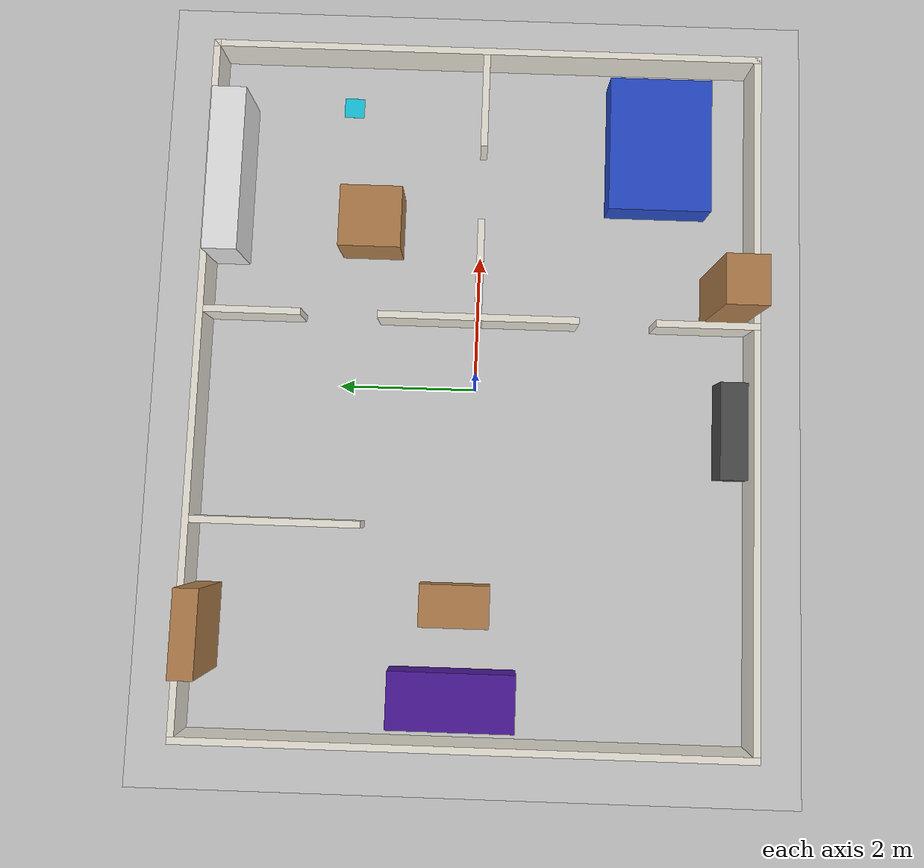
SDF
<sdf version="1.6">
 <world name="fetch_deliver_apartment">
  <physics type="ode">
   <real_time_update_rate>1000.0</real_time_update_rate>
   <max_step_size>0.001</max_step_size>
   <real_time_factor>1</real_time_factor>
   <ode>
    <solver><type>quick</type><iters>150</iters><precon_iters>0</precon_iters><sor>1.4</sor></solver>
    <constraints>
     <cfm>0.00001</cfm>
     <erp>0.2</erp>
     <contact_max_correcting_vel>2000</contact_max_correcting_vel>
     <contact_surface_layer>0.001</contact_surface_layer>
    </constraints>
   </ode>
  </physics>
  <scene><ambient>0.5 0.5 0.5 1</ambient><background>0.7 0.75 0.8 1</background><shadows>false</shadows></scene>
  <include><uri>model://sun</uri></include>
  <include><uri>model://ground_plane</uri></include>
  <model name="walls">
   <static>true</static>
   <link name="wall_0">
    <pose>0.0000 -4.0000 0.3000 0 0 0.0000</pose>
    <collision name="collision"><geometry><box><size>10.1000 0.1000 0.6000</size></box></geometry></collision>
    <visual name="visual">
     <geometry><box><size>10.1000 0.1000 0.6000</size></box></geometry>
     <material>
      <ambient>0.93 0.91 0.86 1</ambient>
      <diffuse>0.93 0.91 0.86 1</diffuse>
      <specular>0.1 0.1 0.1 1</specular>
     </material>
    </visual>
   </link>
   <link name="wall_1">
    <pose>5.0000 0.0000 0.3000 0 0 1.5708</pose>
    <collision name="collision"><geometry><box><size>8.1000 0.1000 0.6000</size></box></geometry></collision>
    <visual name="visual">
     <geometry><box><size>8.1000 0.1000 0.6000</size></box></geometry>
     <material>
      <ambient>0.93 0.91 0.86 1</ambient>
      <diffuse>0.93 0.91 0.86 1</diffuse>
      <specular>0.1 0.1 0.1 1</specular>
     </material>
    </visual>
   </link>
   <link name="wall_2">
    <pose>0.0000 4.0000 0.3000 0 0 3.1416</pose>
    <collision name="collision"><geometry><box><size>10.1000 0.1000 0.6000</size></box></geometry></collision>
    <visual name="visual">
     <geometry><box><size>10.1000 0.1000 0.6000</size></box></geometry>
     <material>
      <ambient>0.93 0.91 0.86 1</ambient>
      <diffuse>0.93 0.91 0.86 1</diffuse>
      <specular>0.1 0.1 0.1 1</specular>
     </material>
    </visual>
   </link>
   <link name="wall_3">
    <pose>-5.0000 0.0000 0.3000 0 0 -1.5708</pose>
    <collision name="collision"><geometry><box><size>8.1000 0.1000 0.6000</size></box></geometry></collision>
    <visual name="visual">
     <geometry><box><size>8.1000 0.1000 0.6000</size></box></geometry>
     <material>
      <ambient>0.93 0.91 0.86 1</ambient>
      <diffuse>0.93 0.91 0.86 1</diffuse>
      <specular>0.1 0.1 0.1 1</specular>
     </material>
    </visual>
   </link>
   <link name="wall_4">
    <pose>1.0000 -3.3000 0.3000 0 0 1.5708</pose>
    <collision name="collision"><geometry><box><size>1.5000 0.1000 0.6000</size></box></geometry></collision>
    <visual name="visual">
     <geometry><box><size>1.5000 0.1000 0.6000</size></box></geometry>
     <material>
      <ambient>0.93 0.91 0.86 1</ambient>
      <diffuse>0.93 0.91 0.86 1</diffuse>
      <specular>0.1 0.1 0.1 1</specular>
     </material>
    </visual>
   </link>
   <link name="wall_5">
    <pose>1.0000 0.0000 0.3000 0 0 1.5708</pose>
    <collision name="collision"><geometry><box><size>2.9000 0.1000 0.6000</size></box></geometry></collision>
    <visual name="visual">
     <geometry><box><size>2.9000 0.1000 0.6000</size></box></geometry>
     <material>
      <ambient>0.93 0.91 0.86 1</ambient>
      <diffuse>0.93 0.91 0.86 1</diffuse>
      <specular>0.1 0.1 0.1 1</specular>
     </material>
    </visual>
   </link>
   <link name="wall_6">
    <pose>1.0000 3.3000 0.3000 0 0 1.5708</pose>
    <collision name="collision"><geometry><box><size>1.5000 0.1000 0.6000</size></box></geometry></collision>
    <visual name="visual">
     <geometry><box><size>1.5000 0.1000 0.6000</size></box></geometry>
     <material>
      <ambient>0.93 0.91 0.86 1</ambient>
      <diffuse>0.93 0.91 0.86 1</diffuse>
      <specular>0.1 0.1 0.1 1</specular>
     </material>
    </visual>
   </link>
   <link name="wall_7">
    <pose>1.7000 0.0000 0.3000 0 0 0.0000</pose>
    <collision name="collision"><geometry><box><size>1.5000 0.1000 0.6000</size></box></geometry></collision>
    <visual name="visual">
     <geometry><box><size>1.5000 0.1000 0.6000</size></box></geometry>
     <material>
      <ambient>0.93 0.91 0.86 1</ambient>
      <diffuse>0.93 0.91 0.86 1</diffuse>
      <specular>0.1 0.1 0.1 1</specular>
     </material>
    </visual>
   </link>
   <link name="wall_8">
    <pose>4.3000 0.0000 0.3000 0 0 0.0000</pose>
    <collision name="collision"><geometry><box><size>1.5000 0.1000 0.6000</size></box></geometry></collision>
    <visual name="visual">
     <geometry><box><size>1.5000 0.1000 0.6000</size></box></geometry>
     <material>
      <ambient>0.93 0.91 0.86 1</ambient>
      <diffuse>0.93 0.91 0.86 1</diffuse>
      <specular>0.1 0.1 0.1 1</specular>
     </material>
    </visual>
   </link>
   <link name="wall_9">
    <pose>-2.0000 2.8000 0.3000 0 0 1.5708</pose>
    <collision name="collision"><geometry><box><size>2.5000 0.1000 0.6000</size></box></geometry></collision>
    <visual name="visual">
     <geometry><box><size>2.5000 0.1000 0.6000</size></box></geometry>
     <material>
      <ambient>0.93 0.91 0.86 1</ambient>
      <diffuse>0.93 0.91 0.86 1</diffuse>
      <specular>0.1 0.1 0.1 1</specular>
     </material>
    </visual>
   </link>
  </model>
  <model name="sofa">
   <static>true</static>
   <pose>-4.4 0.2 0 0 0 1.5708</pose>
   <link name="link">
    <pose>0.0000 0.0000 0.2250 0 0 0.0000</pose>
    <collision name="collision"><geometry><box><size>1.8000 0.8000 0.4500</size></box></geometry></collision>
    <visual name="visual">
     <geometry><box><size>1.8000 0.8000 0.4500</size></box></geometry>
     <material>
      <script><uri>file://media/materials/scripts/gazebo.material</uri><name>Gazebo/Indigo</name></script>
     </material>
    </visual>
   </link>
  </model>
  <model name="coffee_table">
   <static>true</static>
   <pose>-3.1 0.2 0 0 0 0.0</pose>
   <link name="link">
    <pose>0.0000 0.0000 0.2000 0 0 0.0000</pose>
    <collision name="collision"><geometry><box><size>0.6000 1.0000 0.4000</size></box></geometry></collision>
    <visual name="visual">
     <geometry><box><size>0.6000 1.0000 0.4000</size></box></geometry>
     <material>
      <script><uri>file://media/materials/scripts/gazebo.material</uri><name>Gazebo/Wood</name></script>
     </material>
    </visual>
   </link>
  </model>
  <model name="tv_stand">
   <static>true</static>
   <pose>-0.5 -3.7 0 0 0 0.0</pose>
   <link name="link">
    <pose>0.0000 0.0000 0.2500 0 0 0.0000</pose>
    <collision name="collision"><geometry><box><size>1.4000 0.4000 0.5000</size></box></geometry></collision>
    <visual name="visual">
     <geometry><box><size>1.4000 0.4000 0.5000</size></box></geometry>
     <material>
      <script><uri>file://media/materials/scripts/gazebo.material</uri><name>Gazebo/DarkGrey</name></script>
     </material>
    </visual>
   </link>
  </model>
  <model name="bookshelf">
   <static>true</static>
   <pose>-3.5 3.75 0 0 0 0.0</pose>
   <link name="link">
    <pose>0.0000 0.0000 0.6000 0 0 0.0000</pose>
    <collision name="collision"><geometry><box><size>1.2000 0.3500 1.2000</size></box></geometry></collision>
    <visual name="visual">
     <geometry><box><size>1.2000 0.3500 1.2000</size></box></geometry>
     <material>
      <script><uri>file://media/materials/scripts/gazebo.material</uri><name>Gazebo/Wood</name></script>
     </material>
    </visual>
   </link>
  </model>
  <model name="kitchen_counter">
   <static>true</static>
   <pose>3.0 3.7 0 0 0 0.0</pose>
   <link name="link">
    <pose>0.0000 0.0000 0.4500 0 0 0.0000</pose>
    <collision name="collision"><geometry><box><size>2.4000 0.5000 0.9000</size></box></geometry></collision>
    <visual name="visual">
     <geometry><box><size>2.4000 0.5000 0.9000</size></box></geometry>
     <material>
      <script><uri>file://media/materials/scripts/gazebo.material</uri><name>Gazebo/White</name></script>
     </material>
    </visual>
   </link>
  </model>
  <model name="dining_table">
   <static>true</static>
   <pose>2.4 1.6 0 0 0 0.0</pose>
   <link name="link">
    <pose>0.0000 0.0000 0.3750 0 0 0.0000</pose>
    <collision name="collision"><geometry><box><size>0.9000 0.9000 0.7500</size></box></geometry></collision>
    <visual name="visual">
     <geometry><box><size>0.9000 0.9000 0.7500</size></box></geometry>
     <material>
      <script><uri>file://media/materials/scripts/gazebo.material</uri><name>Gazebo/Wood</name></script>
     </material>
    </visual>
   </link>
  </model>
  <model name="bed">
   <static>true</static>
   <pose>3.7 -2.6 0 0 0 0.0</pose>
   <link name="link">
    <pose>0.0000 0.0000 0.2500 0 0 0.0000</pose>
    <collision name="collision"><geometry><box><size>2.0000 1.5000 0.5000</size></box></geometry></collision>
    <visual name="visual">
     <geometry><box><size>2.0000 1.5000 0.5000</size></box></geometry>
     <material>
      <script><uri>file://media/materials/scripts/gazebo.material</uri><name>Gazebo/Blue</name></script>
     </material>
    </visual>
   </link>
  </model>
  <model name="wardrobe">
   <static>true</static>
   <pose>1.45 -3.6 0 0 0 0.0</pose>
   <link name="link">
    <pose>0.0000 0.0000 0.8000 0 0 0.0000</pose>
    <collision name="collision"><geometry><box><size>0.7000 0.6000 1.6000</size></box></geometry></collision>
    <visual name="visual">
     <geometry><box><size>0.7000 0.6000 1.6000</size></box></geometry>
     <material>
      <script><uri>file://media/materials/scripts/gazebo.material</uri><name>Gazebo/Wood</name></script>
     </material>
    </visual>
   </link>
  </model>
  <model name="dropoff_zone">
   <static>true</static>
   <pose>4.3 2.0 0.0005 0 0 0</pose>
   <link name="link">
    <visual name="visual">
     <geometry><box><size>0.30 0.30 0.001</size></box></geometry>
     <material>
      <ambient>0.1 0.8 0.9 1</ambient>
      <diffuse>0.1 0.8 0.9 1</diffuse>
      <specular>0.1 0.1 0.1 1</specular>
     </material>
    </visual>
   </link>
  </model>
  <plugin name="gazebo_ros_state" filename="libgazebo_ros_state.so">
   <ros><namespace>/gazebo</namespace></ros>
   <update_rate>20.0</update_rate>
  </plugin>
  <plugin name="honest_link_attacher" filename="libhonest_link_attacher.so">
   <ros><namespace>/fetch_deliver</namespace></ros>
   <robot_model>turtlebot3_manipulation_system</robot_model>
   <base_link>base_footprint</base_link>
   <ee_link>link5</ee_link>
   <ee_offset>0.126 0 0</ee_offset>
   <left_finger_joint>gripper_left_joint</left_finger_joint>
   <right_finger_joint>gripper_right_joint</right_finger_joint>
   <finger_base_gap>0.042</finger_base_gap>
   <max_closed_opening>0.034</max_closed_opening>
   <pose_tolerance>0.02</pose_tolerance>
   <angle_tolerance>0.35</angle_tolerance>
   <object_tolerance>0.045</object_tolerance>
  </plugin>
 </world>
</sdf>
